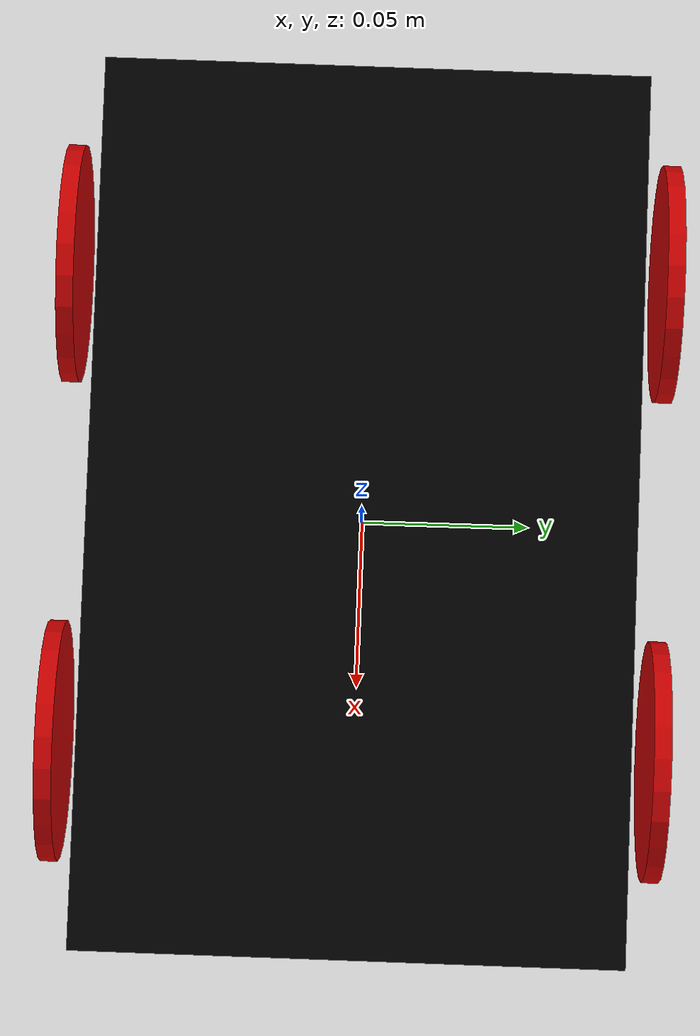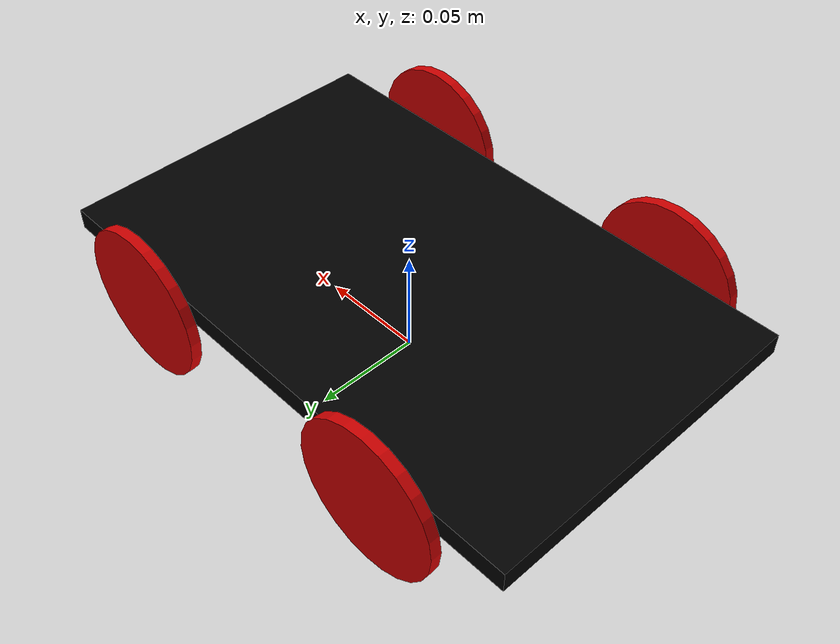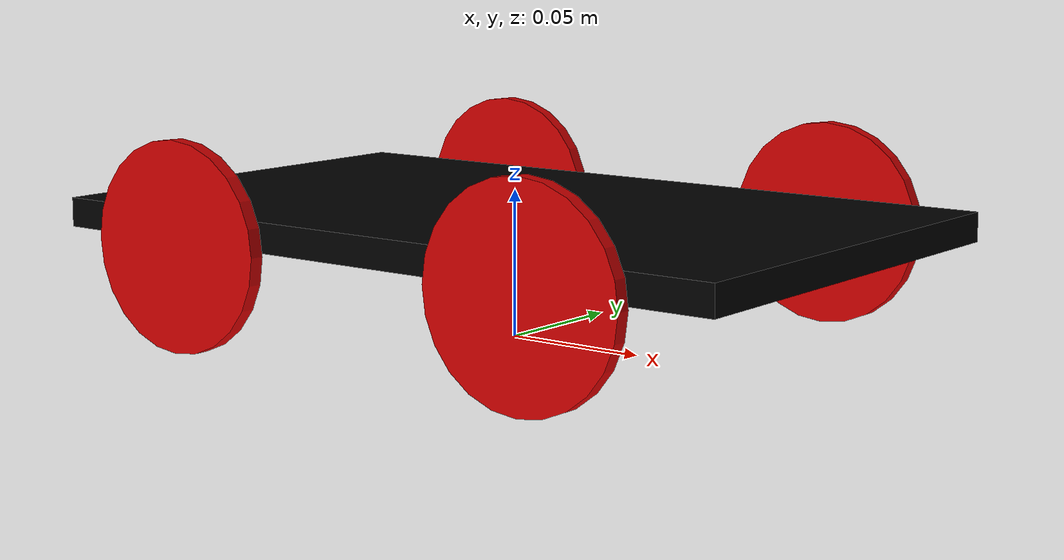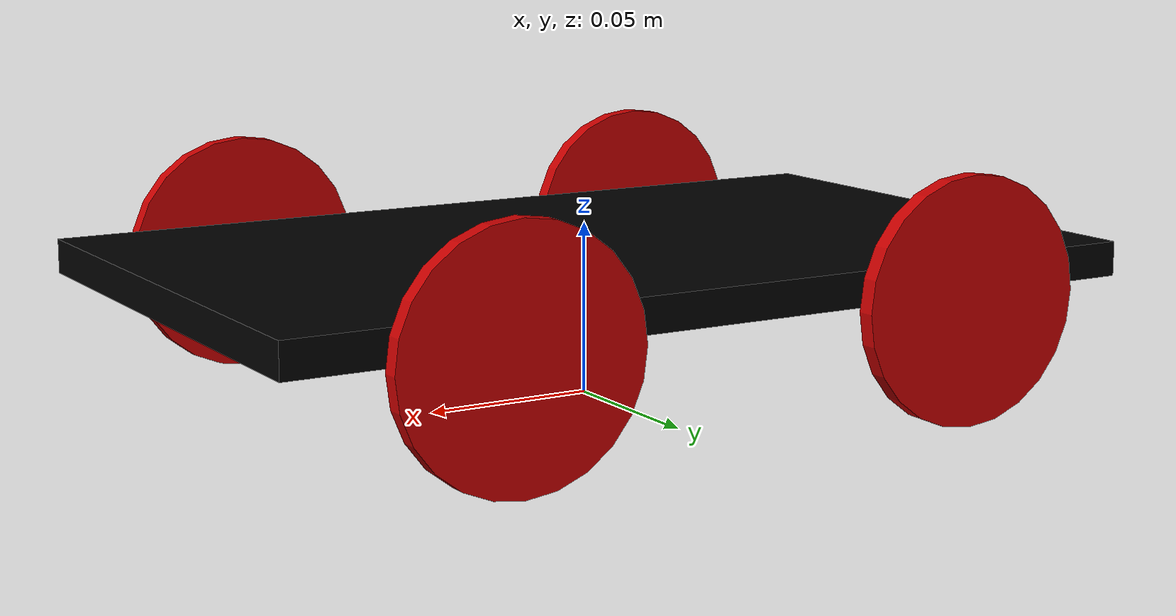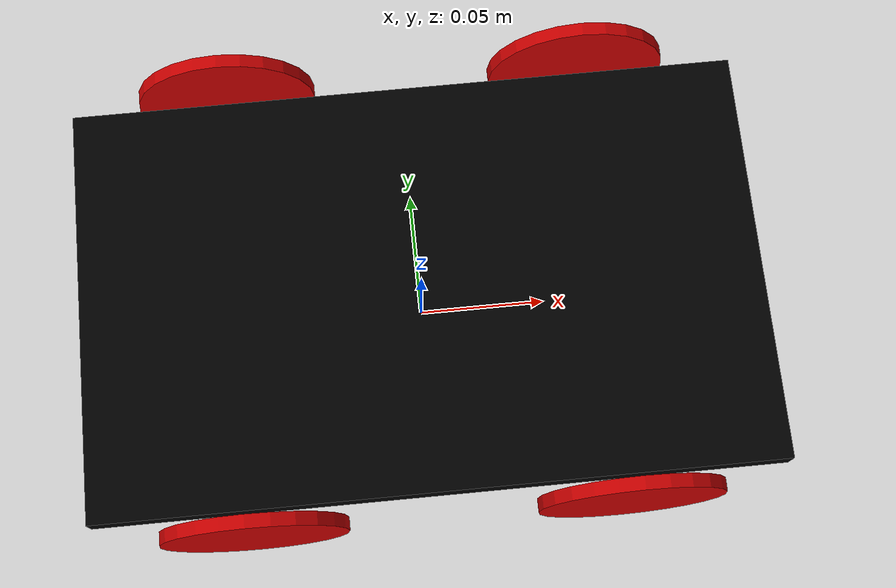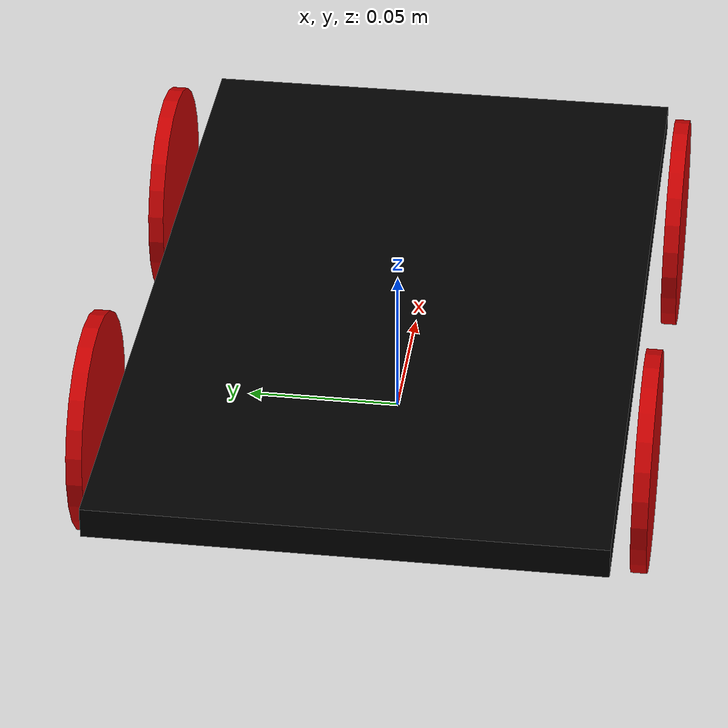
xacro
<?xml version="1.0"?>
<robot xmlns:xacro="http://www.ros.org/wiki/xacro" name="robot_tutorial">

  <xacro:property name="base_width" value="0.16"/>
  <xacro:property name="base_len" value="0.26"/>
  <xacro:property name="wheel_radius" value="0.035"/>
  <xacro:property name="base_wheel_gap" value="0.007"/>
  <xacro:property name="wheel_separation" value="0.15"/>
  <xacro:property name="wheel_joint_offset" value="0.07"/>

  <xacro:property name="caster_wheel_radius" value="${wheel_radius/2}"/>
  <xacro:property name="caster_wheel_mass" value="0.001"/>
  <xacro:property name="caster_wheel_joint_offset" value="-0.052"/>

  <!--Color Properties-->
  <material name="blue">
    <color rgba="0 0 0.8 1"/>
  </material>
  <material name="black">
    <color rgba="0 0 0 1"/>
  </material>
  <material name="white">
    <color rgba="1 1 1 1"/>
  </material>
  <material name="red">
    <color rgba="0.8 0.0 0.0 1.0"/>
  </material>

  <!--Interial macros-->
  <xacro:macro name="cylinder_inertia" params="m r h">
    <inertial>
      <mass value="${m}"/>
      <inertia ixx="${m*(3*r*r+h*h)/12}" ixy = "0" ixz = "0" iyy="${m*(3*r*r+h*h)/12}" iyz = "0" izz="${m*r*r/2}"/>
    </inertial>
  </xacro:macro>

  <xacro:macro name="box_inertia" params="m w h d">
    <inertial>
      <mass value="${m}"/>
      <inertia ixx="${m / 12.0 * (d*d + h*h)}" ixy="0.0" ixz="0.0" iyy="${m / 12.0 * (w*w + h*h)}" iyz="0.0" izz="${m / 12.0 * (w*w + d*d)}"/>
    </inertial>
  </xacro:macro>

  <xacro:macro name="sphere_inertia" params="m r">
    <inertial>
      <mass value="${m}"/>
      <inertia ixx="${2.0*m*(r*r)/5.0}" ixy="0.0" ixz="0.0" iyy="${2.0*m*(r*r)/5.0}" iyz="0.0" izz="${2.0*m*(r*r)/5.0}"/>
    </inertial>
  </xacro:macro>

  <!--Base Footprint-->
  <link name="base_footprint">
    <xacro:box_inertia m="10" w="0.001" h="0.001" d="0.001"/>
    <visual>
        <origin xyz="0 0 0" rpy="0 0 0" />
        <geometry>
            <box size="0.001 0.001 0.001" />
        </geometry>
    </visual>
  </link>

  <!--Base link-->
  <link name="base_link">
    <xacro:box_inertia m="10" w="${base_len}" h="${base_width}" d="0.01"/>
    <visual>
      <geometry>
        <box size="${base_len} ${base_width} 0.01"/>
      </geometry>
      <material name="black"/>
    </visual>
    <collision>
      <geometry>
        <box size="${base_len} ${base_width} 0.01"/>
      </geometry>
    </collision>
  </link>

  <!--base_link to base_footprint Joint-->
  <joint name="base_link_joint" type="fixed">
    <origin xyz="0 0 ${wheel_radius + 0.005}" rpy="0 0 0" />
    <parent link="base_footprint"/>
    <child link="base_link" />
  </joint>

  <!--Wheel link & joint macro-->
  <xacro:macro name="wheel" params="prefix reflect_x reflect_y">
    <link name="${prefix}_wheel">
      <visual>
        <origin xyz="0 0 0" rpy="${pi/2} 0 0"/>
        <geometry>
          <cylinder radius="${wheel_radius}" length="0.005"/>
        </geometry>
        <material name="red"/>
      </visual>
      <collision>
        <origin xyz="0 0 0" rpy="${pi/2} 0 0"/>
        <geometry>
          <cylinder radius="${wheel_radius}" length="0.005"/>
        </geometry>
      </collision>
      <xacro:cylinder_inertia m="10" r="${wheel_radius}" h="0.005"/>
    </link>

    <joint name="${prefix}_wheel_joint" type="continuous">
      <axis xyz="0 1 0" rpy="0 0 0" />
      <parent link="base_link"/>
      <child link="${prefix}_wheel"/>
      <origin xyz="${wheel_joint_offset*reflect_x} ${((base_width/2)+base_wheel_gap)*reflect_y} -0.005" rpy="0 0 0"/>
    </joint>
  </xacro:macro>

  <!--Create Left & Right Wheel links/joints-->
  <xacro:wheel prefix="left_front" reflect_x="1" reflect_y="1"/>
  <xacro:wheel prefix="right_front" reflect_x="1" reflect_y="-1"/>
  <xacro:wheel prefix="left_back" reflect_x="-1" reflect_y="1"/>
  <xacro:wheel prefix="right_back" reflect_x="-1" reflect_y="-1"/>

  <!--Caster Wheel Link-->

  <!--Caster Wheel Joint-->

  <xacro:include filename="$(find ros_101_gazebo_rviz)/urdf/robot_tutorial_gazebo.xacro"/>

</robot>
